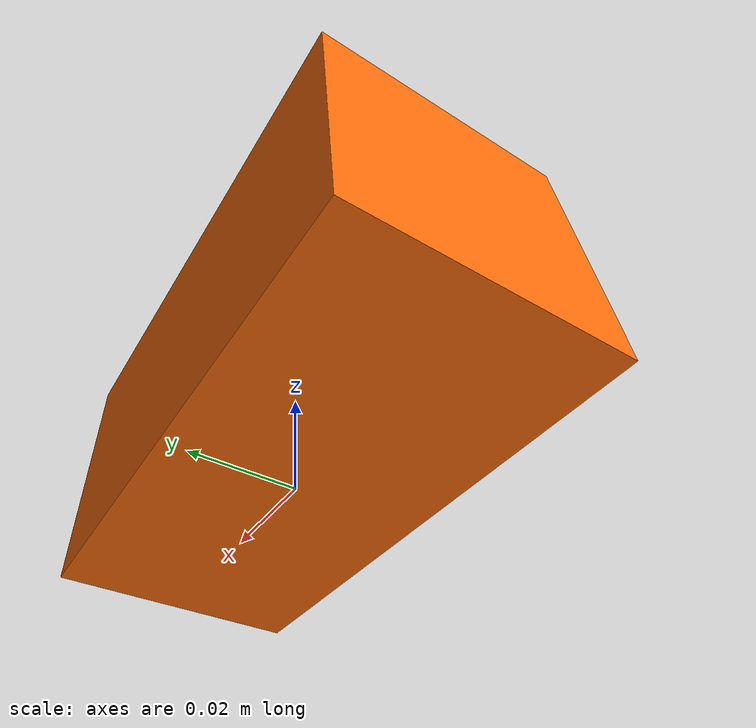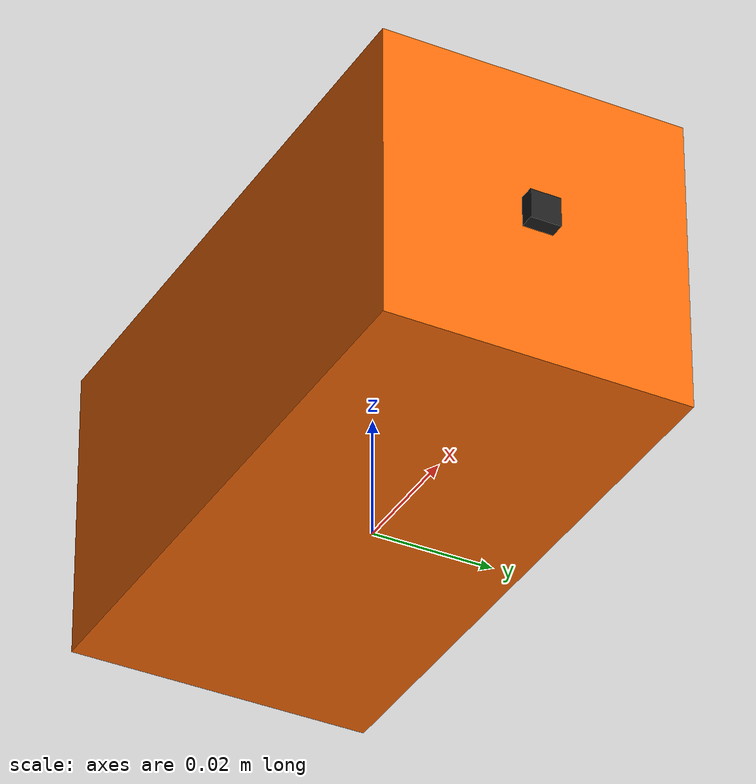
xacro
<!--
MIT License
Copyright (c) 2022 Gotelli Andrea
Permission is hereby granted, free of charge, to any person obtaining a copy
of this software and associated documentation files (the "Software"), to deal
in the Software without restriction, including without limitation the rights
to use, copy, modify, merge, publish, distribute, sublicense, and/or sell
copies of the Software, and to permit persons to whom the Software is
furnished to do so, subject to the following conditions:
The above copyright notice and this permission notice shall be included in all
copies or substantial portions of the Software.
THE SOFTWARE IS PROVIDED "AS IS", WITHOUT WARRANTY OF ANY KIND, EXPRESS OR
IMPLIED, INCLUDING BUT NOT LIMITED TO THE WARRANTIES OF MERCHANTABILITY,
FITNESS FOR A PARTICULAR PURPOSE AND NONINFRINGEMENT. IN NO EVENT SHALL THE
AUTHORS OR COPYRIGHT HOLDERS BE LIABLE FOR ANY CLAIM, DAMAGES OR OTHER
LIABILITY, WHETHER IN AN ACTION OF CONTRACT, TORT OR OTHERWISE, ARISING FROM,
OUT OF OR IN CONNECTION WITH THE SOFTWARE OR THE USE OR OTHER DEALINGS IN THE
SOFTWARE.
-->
<?xml version="1.0"?>

<!-- Revolute-Revolute Manipulator -->
<robot name="robot_limb" xmlns:xacro="http://www.ros.org/wiki/xacro">

    <!-- Constants for joint dimensions -->
    <xacro:property name="mass" value="0.1" />
    <xacro:property name="widthx" value="0.1" />
    <xacro:property name="widthy" value="0.05" />
    <xacro:property name="height" value="0.05" />

    <!-- Position of the base joint -->
    <xacro:arg name="x" default="0.0"/>
    <xacro:arg name="y" default="0.0"/>
    <xacro:arg name="yaw" default="0.0"/>

    <!-- ros_control plugin -->

    <!-- Used for fixing robot to Gazebo 'base_link' -->
    <link name="world"/>

    <!-- Base Link -->
    <link name="base_joint_body">
        <collision name="base_joint_body_collision">
            <origin xyz="0 0 ${height/2}" rpy="0 0 0"/>
            <geometry>
                <box size="${widthx} ${widthy} ${height}"/>
            </geometry>
            <contact_coefficients mu="0.0" kp="0.0" kd="0.0"/>
        </collision>

        <visual name="base_joint_body_visual">
            <origin xyz="0 0 ${height/2}" rpy="0 0 0"/>
            <geometry>
                <box size="${widthx} ${widthy} ${height}"/>
            </geometry>
            <material name="orange"/>
        </visual>

        <inertial>
        <origin xyz="0 0 ${height/2}" rpy="0 0 0"/>
        <mass value="${mass}"/>
        <inertia
        ixx="${mass / 12.0 * (widthy*widthy + height*height)}" ixy="0.0" ixz="0.0"
        iyy="${mass / 12.0 * (height*height + widthx*widthx)}" iyz="0.0"
        izz="${mass / 12.0 * (widthx*widthx + widthy*widthy)}"/>
        </inertial>
    </link>

    <!-- Link1 Properties-->
    <gazebo reference="base_joint_body">
        <material>Gazebo/Orange</material>
    </gazebo>

    <material name="orange">
        <color rgba="${255/255} ${108/255} ${10/255} 1.0"/>
    </material>

    <joint name="base_joint" type="fixed">
        <parent link="world"/>
        <child link="base_joint_body"/>
        <origin xyz="$(arg x) $(arg y) 0" rpy="0 0 $(arg yaw)"/>
    </joint>

    <link name="attach_point">
        <collision name="attach_point_collision">
            <origin xyz="0 0 0" rpy="0 0 0"/>
            <geometry>
                <box size="0.005 0.005 0.005"/>
            </geometry>
        </collision>

        <visual name="attach_point_visual">
            <origin xyz="0 0 0" rpy="0 0 0"/>
            <geometry>
                <box size="0.005 0.005 0.005"/>
            </geometry>
        </visual>

        <inertial>
        <origin xyz="0 0 0" rpy="0 0 0"/>
        <mass value="${mass/10}"/>
        <inertia
        ixx="${mass / 12.0 * 2*(0.005**2)}" ixy="0.0" ixz="0.0"
        iyy="${mass / 12.0 * 2*(0.005**2)}" iyz="0.0"
        izz="${mass / 12.0 * 2*(0.005**2)}"/>
        </inertial>
    </link>

    <gazebo reference="attach_point">
        <material>Gazebo/Black</material>
    </gazebo>

    <joint name="fix_rod_to_joint" type="fixed">
        <parent link="base_joint_body"/>
        <child link="attach_point"/>
        <origin xyz="${widthx/2} 0 ${height/2}" rpy="0 0 ${-pi/2}"/>
    </joint>

<!-- Tell gazebo not to lump fixed joint togheter-->
    <gazebo reference="fix_rod_to_joint">
        <preserveFixedJoint>true</preserveFixedJoint>
    </gazebo>

</robot>
